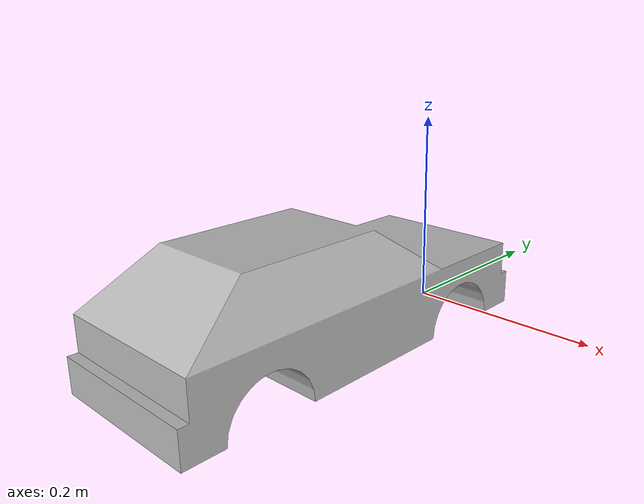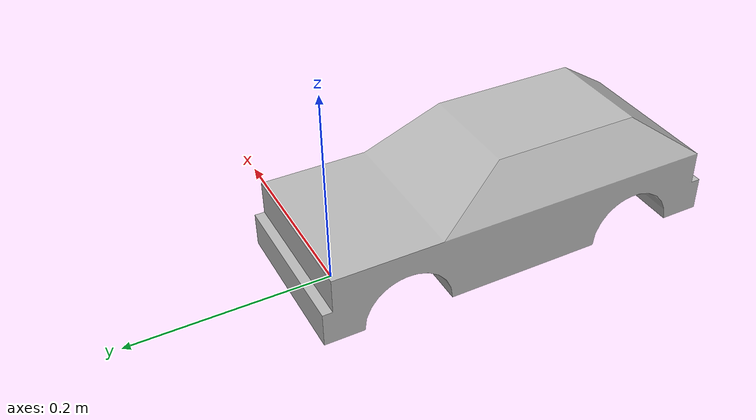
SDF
<?xml version="1.0" ?>
<sdf version="1.4">
  <model name="car_model">
    <link name="link">
      <inertial>
        <pose>0 0 0 0 0 0</pose>
        <mass>1</mass>
        <inertia>
          <ixx>0.00055575</ixx>
          <ixy>0</ixy>
          <ixz>0</ixz>
          <iyy>0.00055575</iyy>
          <iyz>0</iyz>
          <izz>0.0001755</izz>
        </inertia>
      </inertial>
      <collision name="collision">
        <pose>0 0 0 0 0 0</pose>
        <geometry>
          <mesh>
            <uri>model://car_model/meshes/car_model3.dae</uri>
            <scale>1 1 1</scale>
          </mesh>
        </geometry>
      </collision>
      <visual name="visual">
        <pose>0 0 0 0 0 0</pose>
        <geometry>
          <mesh>
            <uri>model://car_model/meshes/car_model3.dae</uri>
           <scale>1 1 1</scale>
          </mesh>
        </geometry>
      </visual>
    </link>
  </model>
</sdf>
